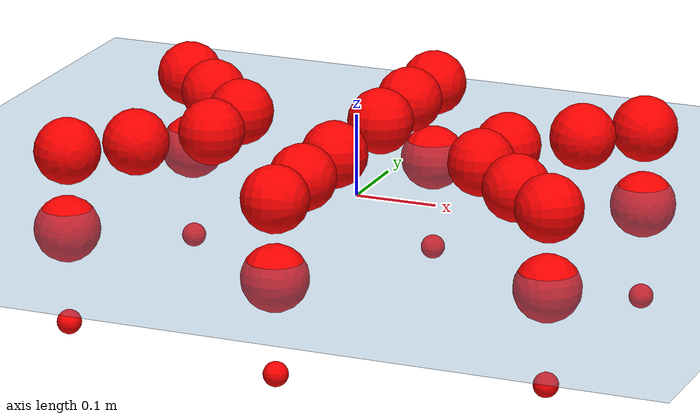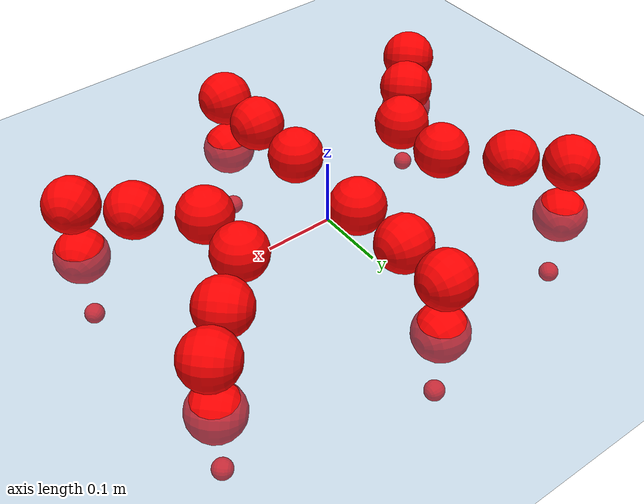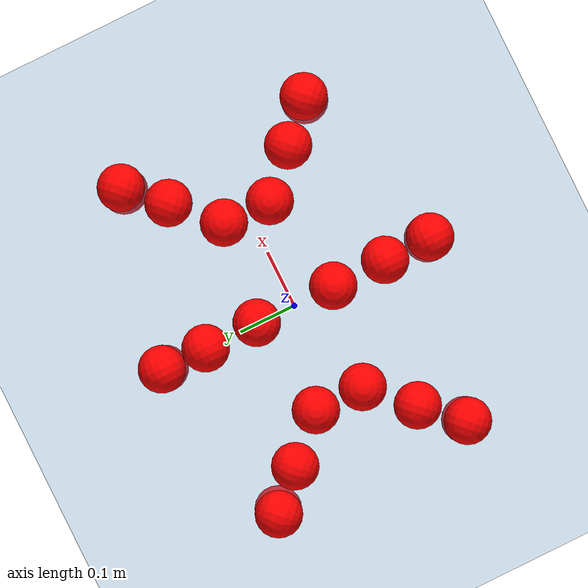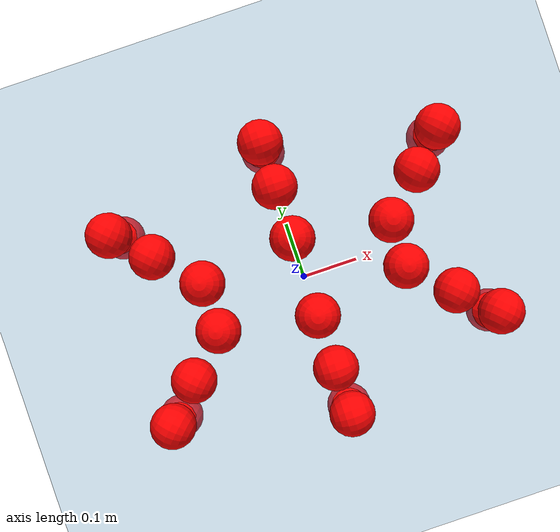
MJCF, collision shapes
<mujoco model="Golem">
  <compiler angle="radian" assetdir="assets" balanceinertia="true" inertiafromgeom="false"/>

  <option timestep="0.005" density="1.2" viscosity="2e-05"/>

  <size nkey="1"/>

  <visual>
    <quality shadowsize="8192"/>
    <map shadowclip="0.5"/>
  </visual>

  <default>
    <default class="/">
      <joint armature="0.01" damping="0.01" frictionloss="0.01"/>
      <geom contype="0" conaffinity="0" group="1" solref="-1000 -80"/>
      <site size="0.01 0.005 0.005" group="5"/>
      <general forcelimited="true" biastype="affine" gainprm="25" biasprm="0 -25 -0.5"/>
      <default class="visual">
        <geom type="mesh" group="2"/>
      </default>
      <default class="collision">
        <geom group="3"/>
      </default>
      <default class="foot">
        <geom size="0.01 0 0" condim="6" group="4" priority="1" solimp="0.015 1 0.01"/>
      </default>
      <default class="reward_collision_sphere">
        <geom group="5" rgba="1 0 0 1"/>
      </default>
    </default>
  </default>

  <asset>
    <texture type="skybox" colorspace="auto" name="//unnamed_texture_0" builtin="gradient" rgb1="0.95 0.95 0.95" rgb2="0.95 0.95 0.95" width="100" height="600"/>
    <texture type="2d" colorspace="auto" name="texplane" builtin="checker" rgb1="0.345 0.575 0.748" rgb2="0.345 0.575 0.748" markrgb="1 1 1" width="512" height="512"/>
    <material name="MatPlane" class="/" texture="texplane" texuniform="true" texrepeat="2 2" specular="0.9"/>
    <mesh name="body" class="/" file="body.stl" scale="0.001 0.001 0.001"/>
    <mesh name="coxa" class="/" file="coxa.stl" scale="0.001 0.001 0.001"/>
    <mesh name="femur" class="/" file="femur.stl" scale="0.001 0.001 0.001"/>
    <mesh name="tibia" class="/" file="tibia.stl" scale="0.001 0.001 0.001"/>
    <mesh name="tarsus" class="/" file="tarsus.stl" scale="0.001 0.001 0.001"/>
  </asset>

  <worldbody>
    <geom name="floor" class="/" size="100 100 0.125" type="plane" group="0" material="MatPlane"/>
    <light name="toplight_shadow" class="/" pos="0 0 5" dir="0.0990148 0.0990148 -0.990148" type="directional" ambient="0.04 0.04 0.04" diffuse="0.55 0.55 0.55" specular="0.12 0.12 0.12"/>
    <light name="toplight_fill" class="/" pos="0 0 5" dir="0.0990148 0.0990148 -0.990148" type="directional" castshadow="false" ambient="0.04 0.04 0.04" diffuse="0.3 0.3 0.3" specular="0.08 0.08 0.08"/>
    <body name="trunk" pos="0.00193916 -0.000280901 -0.000563093" quat="1 -4.78966e-06 -2.27167e-06 5.34902e-06">
      <inertial pos="-0.000228242 -0.000237827 -0.00281383" quat="1 0.000351106 0.000414813 -0.000373452" mass="3.58476" diaginertia="0.0148769 0.00272155 0.0183528"/>
      <joint name="//unnamed_joint_0" type="free"/>
      <geom name="//unnamed_geom_1" class="/" pos="0 0 0.0723428" quat="1 0 0 0" type="mesh" rgba="0.9 0.9 0.9 1" mesh="body"/>
      <site name="imu" class="/" pos="0.149403 0.0073492 0.108749" size="0.009973"/>
      <camera name="track" class="/" pos="0 -1.55108 0" quat="0.707107 0.707107 0 0" mode="trackcom"/>
      <camera name="ego_camera" class="/" pos="0.14118 0 0.113036" quat="-0.5 -0.5 0.5 0.5"/>
      <body name="coxa_RR" pos="-0.194633 -0.0644352 0.0715468" quat="0.382738 4.06156e-05 6.52539e-05 -0.923857">
        <inertial pos="0.000198087 -0.00207539 0.00151277" quat="0.999998 -0.00188686 5.79339e-05 0.000732897" mass="0.192839" diaginertia="0.0150274 0.00278693 0.0182625"/>
        <joint name="coxa_joint_RR" class="/" pos="0 0 0" axis="-0.00127959 -0.00708097 -0.999974" range="-3.14164 3.13998" armature="0.0094181" damping="0" frictionloss="0.0100106"/>
        <geom name="//unnamed_geom_2" class="/" type="mesh" rgba="0.2 0.2 0.2 1" mesh="coxa"/>
        <geom name="//unnamed_geom_3" class="reward_collision_sphere" size="0.039892" pos="-0.0325801 0 0"/>
        <body name="femur_RR" pos="0.0630845 0.000559271 -0.00113555" quat="0.499947 -0.499875 0.500139 0.500038">
          <inertial pos="0.000807514 0.00091838 0.000262742" quat="0.99999 0.000522903 -0.000534329 -0.00444418" mass="0.197927" diaginertia="0.0150951 0.0027719 0.0189518"/>
          <joint name="femur_joint_RR" class="/" pos="0 0 0" axis="0.00131317 -0.00489743 -0.999987" range="-3.16791 3.13208" armature="0.0103096" damping="0.00137423" frictionloss="0.0105558"/>
          <geom name="//unnamed_geom_4" class="/" type="mesh" rgba="0.9 0.9 0.9 1" mesh="femur"/>
          <geom name="//unnamed_geom_5" class="reward_collision_sphere" size="0.039892"/>
          <body name="tibia_RR" pos="-0.000161669 -0.0864485 0.00246049" quat="-0.00052062 1 -0.000452408 -0.000639312">
            <inertial pos="-0.00137297 0.000540194 -5.36471e-05" quat="0.999999 0.000587139 -0.000819289 -4.77985e-05" mass="0.201064" diaginertia="0.0150478 0.00284015 0.0185283"/>
            <joint name="tibia_joint_RR" class="/" pos="0 0 0" axis="0.00525008 -0.000661244 0.999986" range="-3.15766 3.13547" armature="0.00990897" damping="0.00330714" frictionloss="0.0100001"/>
            <geom name="//unnamed_geom_6" class="/" type="mesh" rgba="0.2 0.2 0.2 1" mesh="tibia"/>
            <geom name="//unnamed_geom_7" class="reward_collision_sphere" size="0.039892"/>
            <body name="tarsus_RR" pos="0.0964114 0.00152953 0.00117196" quat="1 4.32481e-06 5.46545e-05 7.22408e-05">
              <inertial pos="0.06767 0.00059255 -0.000872096" quat="0.500115 0.497862 0.502281 0.499733" mass="0.196762" diaginertia="0.0149075 0.00276372 0.0182542"/>
              <joint name="tarsus_joint_RR" class="/" pos="0 0 0" axis="-0.00169588 -0.0050264 0.999986" range="-3.1657 3.13895" armature="0.0103426" damping="0.0383308" frictionloss="0.0103705"/>
              <geom name="//unnamed_geom_8" class="/" type="mesh" rgba="0.9 0.9 0.9 1" mesh="tarsus"/>
              <geom name="foot_1" class="foot" size="0.00987906" pos="0.121632 0 0" quat="0 -0.707107 0 0.707107"/>
              <geom name="//unnamed_geom_10" class="reward_collision_sphere" size="0.039892"/>
              <geom name="//unnamed_geom_11" class="reward_collision_sphere" size="0.0149595" pos="0.116745 0 0"/>
              <site name="foot_1" class="foot" pos="0.121632 0 0" quat="0 -0.707107 0 0.707107" size="0.009973"/>
            </body>
          </body>
        </body>
      </body>
      <body name="coxa_RM" pos="-0.00066694 -0.104203 0.0727299" quat="0.707109 4.4665e-06 1.71029e-05 -0.707104">
        <inertial pos="0.000698795 0.000159455 0.00155929" quat="0.99999 -0.00362492 -0.000537504 0.0024606" mass="0.200742" diaginertia="0.0152246 0.00273443 0.0184977"/>
        <joint name="coxa_joint_RM" class="/" pos="0 0 0" axis="-0.00180426 0.000947667 -0.999998" range="-3.11823 3.13948" armature="0.00996545" damping="0.0053691" frictionloss="0.00881144"/>
        <geom name="//unnamed_geom_12" class="/" type="mesh" rgba="0.2 0.2 0.2 1" mesh="coxa"/>
        <geom name="//unnamed_geom_13" class="reward_collision_sphere" size="0.039892" pos="-0.0325801 0 0"/>
        <body name="femur_RM" pos="0.0628617 0.000536231 0.000445832" quat="0.50037 -0.499481 0.499639 0.50051">
          <inertial pos="-0.000477286 0.000782817 0.000149646" quat="0.999987 0.00391393 -0.00256412 -0.00183186" mass="0.203495" diaginertia="0.0155225 0.002843 0.0189111"/>
          <joint name="femur_joint_RM" class="/" pos="0 0 0" axis="-0.000653924 -0.00183191 -0.999998" range="-3.12882 3.13591" armature="0.0103924" damping="0.0119025" frictionloss="0.00993706"/>
          <geom name="//unnamed_geom_14" class="/" type="mesh" rgba="0.9 0.9 0.9 1" mesh="femur"/>
          <geom name="//unnamed_geom_15" class="reward_collision_sphere" size="0.039892"/>
          <body name="tibia_RM" pos="0.000415537 -0.0834502 0.00154957" quat="-2.33733e-06 1 5.01388e-05 -1.0811e-05">
            <inertial pos="0.000319127 -0.00225681 -5.52216e-05" quat="0.99997 0.00307491 -0.00689896 -0.00158292" mass="0.197315" diaginertia="0.015361 0.00291788 0.0186426"/>
            <joint name="tibia_joint_RM" class="/" pos="0 0 0" axis="-0.000479232 0.00205506 0.999998" range="-3.17085 3.18529" armature="0.00992145" damping="0.0125919" frictionloss="0.00974516"/>
            <geom name="//unnamed_geom_16" class="/" type="mesh" rgba="0.2 0.2 0.2 1" mesh="tibia"/>
            <geom name="//unnamed_geom_17" class="reward_collision_sphere" size="0.039892"/>
            <body name="tarsus_RM" pos="0.0947322 0.000263301 0.000638708" quat="1 -1.71142e-05 7.05602e-06 -0.000189019">
              <inertial pos="0.0645152 0.000373665 0.000999087" quat="0.50519 0.492754 0.497621 0.50433" mass="0.203591" diaginertia="0.0148472 0.00281739 0.0182723"/>
              <joint name="tarsus_joint_RM" class="/" pos="0 0 0" axis="-0.000324146 -0.000488236 1" range="-3.13987 3.15384" armature="0.00950469" damping="0.00497977" frictionloss="0.0100727"/>
              <geom name="//unnamed_geom_18" class="/" type="mesh" rgba="0.9 0.9 0.9 1" mesh="tarsus"/>
              <geom name="foot_2" class="foot" size="0.00971537" pos="0.121632 0 0" quat="0 -0.707107 0 0.707107"/>
              <geom name="//unnamed_geom_20" class="reward_collision_sphere" size="0.039892"/>
              <geom name="//unnamed_geom_21" class="reward_collision_sphere" size="0.0149595" pos="0.116745 0 0"/>
              <site name="foot_2" class="foot" pos="0.121632 0 0" quat="0 -0.707107 0 0.707107" size="0.009973"/>
            </body>
          </body>
        </body>
      </body>
      <body name="coxa_RF" pos="0.193787 -0.0624819 0.0745099" quat="0.923833 -0.000283473 -6.64126e-05 -0.382795">
        <inertial pos="0.000942284 -0.000507643 0.000303336" quat="1 0.000219369 -6.59116e-05 0.000636751" mass="0.198795" diaginertia="0.0150744 0.00277882 0.01874"/>
        <joint name="coxa_joint_RF" class="/" pos="0 0 0" axis="-0.00537406 -0.000884659 -0.999985" range="-3.13939 3.12661" armature="0.0105834" damping="0.0109782" frictionloss="0.0101778"/>
        <geom name="//unnamed_geom_22" class="/" type="mesh" rgba="0.2 0.2 0.2 1" mesh="coxa"/>
        <geom name="//unnamed_geom_23" class="reward_collision_sphere" size="0.039892" pos="-0.0325801 0 0"/>
        <body name="femur_RF" pos="0.0641182 0.000906876 -0.00204649" quat="0.500095 -0.4996 0.500212 0.500093">
          <inertial pos="-0.000854965 -0.000229296 0.000111932" quat="0.999989 -0.00242843 0.00397889 0.000998358" mass="0.200063" diaginertia="0.0151041 0.00284059 0.0190459"/>
          <joint name="femur_joint_RF" class="/" pos="0 0 0" axis="-0.000676696 0.000525933 -1" range="-3.18008 3.11955" armature="0.00925677" damping="0.0127193" frictionloss="0.0103829"/>
          <geom name="//unnamed_geom_24" class="/" type="mesh" rgba="0.9 0.9 0.9 1" mesh="femur"/>
          <geom name="//unnamed_geom_25" class="reward_collision_sphere" size="0.039892"/>
          <body name="tibia_RF" pos="-0.00147018 -0.0847206 0.00187246" quat="-6.42919e-07 1 3.2775e-05 3.26464e-05">
            <inertial pos="-0.00204873 4.03129e-06 0.000367715" quat="1 -0.000512642 -2.76832e-05 9.14745e-05" mass="0.201865" diaginertia="0.0150974 0.00279116 0.0184599"/>
            <joint name="tibia_joint_RF" class="/" pos="0 0 0" axis="-0.00308148 -0.00804457 0.999963" range="-3.12605 3.09666" armature="0.0104278" damping="0.0129143" frictionloss="0.0100065"/>
            <geom name="//unnamed_geom_26" class="/" type="mesh" rgba="0.2 0.2 0.2 1" mesh="tibia"/>
            <geom name="//unnamed_geom_27" class="reward_collision_sphere" size="0.039892"/>
            <body name="tarsus_RF" pos="0.0946595 0.00162428 0.00159033" quat="1 0.000458373 -0.00086405 1.77439e-05">
              <inertial pos="0.0653119 -0.000160464 -0.000243814" quat="0.499901 0.500019 0.499972 0.500108" mass="0.19677" diaginertia="0.0150812 0.00280872 0.0183476"/>
              <joint name="tarsus_joint_RF" class="/" pos="0 0 0" axis="0.00313098 0.00108217 0.999995" range="-3.11964 3.14997" armature="0.00985541" damping="0.00129047" frictionloss="0.0103193"/>
              <geom name="//unnamed_geom_28" class="/" type="mesh" rgba="0.9 0.9 0.9 1" mesh="tarsus"/>
              <geom name="foot_3" class="foot" size="0.010188" pos="0.121632 0 0" quat="0 -0.707107 0 0.707107"/>
              <geom name="//unnamed_geom_30" class="reward_collision_sphere" size="0.039892"/>
              <geom name="//unnamed_geom_31" class="reward_collision_sphere" size="0.0149595" pos="0.116745 0 0"/>
              <site name="foot_3" class="foot" pos="0.121632 0 0" quat="0 -0.707107 0 0.707107" size="0.009973"/>
            </body>
          </body>
        </body>
      </body>
      <body name="coxa_LR" pos="-0.194652 0.0675935 0.0718439" quat="0.382574 6.09301e-05 3.96903e-05 0.923925">
        <inertial pos="-0.00160311 -0.000996208 -0.00152638" quat="0.999946 0.00209135 0.0101416 -0.000308328" mass="0.19902" diaginertia="0.0151688 0.0029042 0.0183481"/>
        <joint name="coxa_joint_LR" class="/" pos="0 0 0" axis="-0.0123466 0.00319528 -0.999919" range="-3.12347 3.15108" armature="0.010137" damping="0.0178845" frictionloss="0.00948751"/>
        <geom name="//unnamed_geom_32" class="/" type="mesh" rgba="0.2 0.2 0.2 1" mesh="coxa"/>
        <geom name="//unnamed_geom_33" class="reward_collision_sphere" size="0.039892" pos="-0.0325801 0 0"/>
        <body name="femur_LR" pos="0.066029 -0.00239797 -0.00209276" quat="0.500203 -0.499857 0.500061 0.499879">
          <inertial pos="0.000744351 0.000372122 -0.000510956" quat="0.999997 -0.00160303 0.00111108 -0.00143321" mass="0.198475" diaginertia="0.015017 0.00283146 0.018277"/>
          <joint name="femur_joint_LR" class="/" pos="0 0 0" axis="0.000606871 -0.000241634 1" range="-3.15724 3.13065" armature="0.00982387" damping="0.0134343" frictionloss="0.00888444"/>
          <geom name="//unnamed_geom_34" class="/" type="mesh" rgba="0.9 0.9 0.9 1" mesh="femur"/>
          <geom name="//unnamed_geom_35" class="reward_collision_sphere" size="0.039892"/>
          <body name="tibia_LR" pos="-4.76587e-05 -0.083338 -5.94352e-05" quat="0.000681936 1 -4.16068e-05 0.000551158">
            <inertial pos="-4.2297e-05 0.000403896 1.38056e-05" quat="1 0.00040148 -0.00068682 -0.000234906" mass="0.19421" diaginertia="0.0150123 0.00280861 0.0181718"/>
            <joint name="tibia_joint_LR" class="/" pos="0 0 0" axis="0.00515128 -0.000144298 -0.999987" range="-3.12666 3.12036" armature="0.00975025" damping="0.00949677" frictionloss="0.0102077"/>
            <geom name="//unnamed_geom_36" class="/" type="mesh" rgba="0.2 0.2 0.2 1" mesh="tibia"/>
            <geom name="//unnamed_geom_37" class="reward_collision_sphere" size="0.039892"/>
            <body name="tarsus_LR" pos="0.0950665 -0.00101492 0.00221081" quat="0.999999 0.000930372 -0.00037989 9.24144e-05">
              <inertial pos="0.0681408 0.000497565 -0.00199662" quat="0.499792 0.500114 0.50009 0.500003" mass="0.196057" diaginertia="0.0149456 0.00275426 0.018128"/>
              <joint name="tarsus_joint_LR" class="/" pos="0 0 0" axis="-0.00232887 -0.00282567 -0.999993" range="-3.16395 3.11414" armature="0.0102514" damping="0" frictionloss="0.00947328"/>
              <geom name="//unnamed_geom_38" class="/" type="mesh" rgba="0.9 0.9 0.9 1" mesh="tarsus"/>
              <geom name="foot_4" class="foot" size="0.00973621" pos="0.121632 0 0" quat="0.707107 0 -0.707107 0"/>
              <geom name="//unnamed_geom_40" class="reward_collision_sphere" size="0.039892"/>
              <geom name="//unnamed_geom_41" class="reward_collision_sphere" size="0.0149595" pos="0.116745 0 0"/>
              <site name="foot_4" class="foot" pos="0.121632 0 0" quat="0.707107 0 -0.707107 0" size="0.009973"/>
            </body>
          </body>
        </body>
      </body>
      <body name="coxa_LM" pos="0.000407636 0.100906 0.0736946" quat="0.707042 -0.000121206 -0.000141 0.707172">
        <inertial pos="-0.000533225 0.000998862 0.00121828" quat="1 5.54465e-05 -4.78637e-05 -6.35897e-05" mass="0.201054" diaginertia="0.0153983 0.00285693 0.018723"/>
        <joint name="coxa_joint_LM" class="/" pos="0 0 0" axis="-2.08024e-05 0.000355318 -1" range="-3.11496 3.1464" armature="0.00957168" damping="0.00312956" frictionloss="0.0104405"/>
        <geom name="//unnamed_geom_42" class="/" type="mesh" rgba="0.2 0.2 0.2 1" mesh="coxa"/>
        <geom name="//unnamed_geom_43" class="reward_collision_sphere" size="0.039892" pos="-0.0325801 0 0"/>
        <body name="femur_LM" pos="0.061333 0.000434247 0.000721377" quat="0.499989 -0.500007 0.499985 0.500019">
          <inertial pos="-0.000918572 -0.0014155 0.00222733" quat="0.999954 -0.00730828 -0.0028277 0.00551219" mass="0.196693" diaginertia="0.0148475 0.00269904 0.0180497"/>
          <joint name="femur_joint_LM" class="/" pos="0 0 0" axis="-0.00295254 0.00201821 0.999994" range="-3.14273 3.11935" armature="0.00980375" damping="0.0052664" frictionloss="0.0100742"/>
          <geom name="//unnamed_geom_44" class="/" type="mesh" rgba="0.9 0.9 0.9 1" mesh="femur"/>
          <geom name="//unnamed_geom_45" class="reward_collision_sphere" size="0.039892"/>
          <body name="tibia_LM" pos="0.00100844 -0.0800751 -0.000804589" quat="0.000664903 0.999999 -0.000494733 -0.000859028">
            <inertial pos="-0.000262596 -0.00296569 -0.000976091" quat="1 0.000446228 -0.000222303 -5.35321e-05" mass="0.200891" diaginertia="0.0149202 0.00286072 0.0182278"/>
            <joint name="tibia_joint_LM" class="/" pos="0 0 0" axis="0.00227294 -0.00131341 -0.999997" range="-3.14208 3.12168" armature="0.0107093" damping="0" frictionloss="0.0102627"/>
            <geom name="//unnamed_geom_46" class="/" type="mesh" rgba="0.2 0.2 0.2 1" mesh="tibia"/>
            <geom name="//unnamed_geom_47" class="reward_collision_sphere" size="0.039892"/>
            <body name="tarsus_LM" pos="0.096841 -0.000386939 -0.000670253" quat="0.999999 0.000913481 0.000451591 0.000505059">
              <inertial pos="0.0651365 0.000655743 0.000586897" quat="0.500262 0.49992 0.49997 0.499848" mass="0.193452" diaginertia="0.0148738 0.00273984 0.0180784"/>
              <joint name="tarsus_joint_LM" class="/" pos="0 0 0" axis="0.00171782 0.00125833 -0.999998" range="-3.09492 3.12752" armature="0.0107326" damping="0" frictionloss="0.00947639"/>
              <geom name="//unnamed_geom_48" class="/" type="mesh" rgba="0.9 0.9 0.9 1" mesh="tarsus"/>
              <geom name="foot_5" class="foot" size="0.00965029" pos="0.121632 0 0" quat="0.707107 0 -0.707107 0"/>
              <geom name="//unnamed_geom_50" class="reward_collision_sphere" size="0.039892"/>
              <geom name="//unnamed_geom_51" class="reward_collision_sphere" size="0.0149595" pos="0.116745 0 0"/>
              <site name="foot_5" class="foot" pos="0.121632 0 0" quat="0.707107 0 -0.707107 0" size="0.009973"/>
            </body>
          </body>
        </body>
      </body>
      <body name="coxa_LF" pos="0.195354 0.0670245 0.0703544" quat="0.923851 -2.52715e-05 -0.000167997 0.382751">
        <inertial pos="1.73422e-05 0.000524346 0.00132177" quat="0.999999 0.00133399 0.000538737 0.000450185" mass="0.194276" diaginertia="0.0147843 0.00272797 0.0179084"/>
        <joint name="coxa_joint_LF" class="/" pos="0 0 0" axis="-0.00424812 -0.00262838 -0.999988" range="-3.12086 3.18152" armature="0.0106801" damping="0.00105888" frictionloss="0.00988412"/>
        <geom name="//unnamed_geom_52" class="/" type="mesh" rgba="0.2 0.2 0.2 1" mesh="coxa"/>
        <geom name="//unnamed_geom_53" class="reward_collision_sphere" size="0.039892" pos="-0.0325801 0 0"/>
        <body name="femur_LF" pos="0.0644994 -0.00115203 0.000265974" quat="0.499263 -0.500577 0.500055 0.500104">
          <inertial pos="0.00209448 0.00016523 0.000269418" quat="0.999994 -0.000226573 -0.00146374 -0.00322228" mass="0.200458" diaginertia="0.015231 0.00284544 0.0186446"/>
          <joint name="femur_joint_LF" class="/" pos="0 0 0" axis="0.00351971 0.00227847 0.999991" range="-3.1415 3.13593" armature="0.0106713" damping="0.00760218" frictionloss="0.0102799"/>
          <geom name="//unnamed_geom_54" class="/" type="mesh" rgba="0.9 0.9 0.9 1" mesh="femur"/>
          <geom name="//unnamed_geom_55" class="reward_collision_sphere" size="0.039892"/>
          <body name="tibia_LF" pos="0.000513937 -0.0824019 0.00106862" quat="0.000140852 1 -0.000386651 7.33812e-05">
            <inertial pos="-3.68753e-05 0.000810665 -0.000945246" quat="0.999992 -0.00193384 -0.00177853 -0.00302532" mass="0.200853" diaginertia="0.0152935 0.00282856 0.0185018"/>
            <joint name="tibia_joint_LF" class="/" pos="0 0 0" axis="-0.00170506 -0.000374953 -0.999998" range="-3.14128 3.14828" armature="0.0100428" damping="0" frictionloss="0.00962708"/>
            <geom name="//unnamed_geom_56" class="/" type="mesh" rgba="0.2 0.2 0.2 1" mesh="tibia"/>
            <geom name="//unnamed_geom_57" class="reward_collision_sphere" size="0.039892"/>
            <body name="tarsus_LF" pos="0.0951056 -0.000107186 -0.000731399" quat="1 0.000226251 -0.000541873 -0.000730349">
              <inertial pos="0.06568 0.000803699 0.000840063" quat="0.501258 0.498106 0.500939 0.499691" mass="0.19504" diaginertia="0.015044 0.00281102 0.0181043"/>
              <joint name="tarsus_joint_LF" class="/" pos="0 0 0" axis="-0.00242102 -0.00416251 -0.999988" stiffness="0.0262587" range="-3.15414 3.1214" armature="0.00988541" damping="0.0294806" frictionloss="0.00974357"/>
              <geom name="//unnamed_geom_58" class="/" type="mesh" rgba="0.9 0.9 0.9 1" mesh="tarsus"/>
              <geom name="foot_6" class="foot" size="0.01017" pos="0.121632 0 0" quat="0.707107 0 -0.707107 0"/>
              <geom name="//unnamed_geom_60" class="reward_collision_sphere" size="0.039892"/>
              <geom name="//unnamed_geom_61" class="reward_collision_sphere" size="0.0149595" pos="0.116745 0 0"/>
              <site name="foot_6" class="foot" pos="0.121632 0 0" quat="0.707107 0 -0.707107 0" size="0.009973"/>
            </body>
          </body>
        </body>
      </body>
    </body>
  </worldbody>

  <contact>
    <pair class="/" geom1="floor" geom2="foot_1" name="//unnamed_contact_0"/>
    <pair class="/" geom1="floor" geom2="foot_2" name="//unnamed_contact_1"/>
    <pair class="/" geom1="floor" geom2="foot_3" name="//unnamed_contact_2"/>
    <pair class="/" geom1="floor" geom2="foot_4" name="//unnamed_contact_3"/>
    <pair class="/" geom1="floor" geom2="foot_5" name="//unnamed_contact_4"/>
    <pair class="/" geom1="floor" geom2="foot_6" name="//unnamed_contact_5"/>
  </contact>

  <actuator>
    <general name="coxa_joint_RR" class="/" joint="coxa_joint_RR" forcerange="-7.43168 7.43168" gainprm="23.9998" biasprm="0 -23.9998 -0.528106"/>
    <general name="femur_joint_RR" class="/" joint="femur_joint_RR" forcerange="-7.3262 7.3262" gainprm="23.9998" biasprm="0 -23.9998 -0.528106"/>
    <general name="tibia_joint_RR" class="/" joint="tibia_joint_RR" forcerange="-7.28191 7.28191" gainprm="23.9998" biasprm="0 -23.9998 -0.528106"/>
    <general name="tarsus_joint_RR" class="/" joint="tarsus_joint_RR" forcerange="-7.47841 7.47841" gainprm="23.9998" biasprm="0 -23.9998 -0.528106"/>
    <general name="coxa_joint_RM" class="/" joint="coxa_joint_RM" forcerange="-6.7156 6.7156" gainprm="23.9998" biasprm="0 -23.9998 -0.528106"/>
    <general name="femur_joint_RM" class="/" joint="femur_joint_RM" forcerange="-7.33687 7.33687" gainprm="23.9998" biasprm="0 -23.9998 -0.528106"/>
    <general name="tibia_joint_RM" class="/" joint="tibia_joint_RM" forcerange="-7.3199 7.3199" gainprm="23.9998" biasprm="0 -23.9998 -0.528106"/>
    <general name="tarsus_joint_RM" class="/" joint="tarsus_joint_RM" forcerange="-7.43046 7.43046" gainprm="23.9998" biasprm="0 -23.9998 -0.528106"/>
    <general name="coxa_joint_RF" class="/" joint="coxa_joint_RF" forcerange="-6.78156 6.78156" gainprm="23.9998" biasprm="0 -23.9998 -0.528106"/>
    <general name="femur_joint_RF" class="/" joint="femur_joint_RF" forcerange="-7.4185 7.4185" gainprm="23.9998" biasprm="0 -23.9998 -0.528106"/>
    <general name="tibia_joint_RF" class="/" joint="tibia_joint_RF" forcerange="-6.68264 6.68264" gainprm="23.9998" biasprm="0 -23.9998 -0.528106"/>
    <general name="tarsus_joint_RF" class="/" joint="tarsus_joint_RF" forcerange="-7.10395 7.10395" gainprm="23.9998" biasprm="0 -23.9998 -0.528106"/>
    <general name="coxa_joint_LR" class="/" joint="coxa_joint_LR" forcerange="-7.25787 7.25787" gainprm="23.9998" biasprm="0 -23.9998 -0.528106"/>
    <general name="femur_joint_LR" class="/" joint="femur_joint_LR" forcerange="-7.30965 7.30965" gainprm="23.9998" biasprm="0 -23.9998 -0.528106"/>
    <general name="tibia_joint_LR" class="/" joint="tibia_joint_LR" forcerange="-7.25668 7.25668" gainprm="23.9998" biasprm="0 -23.9998 -0.528106"/>
    <general name="tarsus_joint_LR" class="/" joint="tarsus_joint_LR" forcerange="-7.00974 7.00974" gainprm="23.9998" biasprm="0 -23.9998 -0.528106"/>
    <general name="coxa_joint_LM" class="/" joint="coxa_joint_LM" forcerange="-7.58875 7.58875" gainprm="23.9998" biasprm="0 -23.9998 -0.528106"/>
    <general name="femur_joint_LM" class="/" joint="femur_joint_LM" forcerange="-7.25745 7.25745" gainprm="23.9998" biasprm="0 -23.9998 -0.528106"/>
    <general name="tibia_joint_LM" class="/" joint="tibia_joint_LM" forcerange="-7.13783 7.13783" gainprm="23.9998" biasprm="0 -23.9998 -0.528106"/>
    <general name="tarsus_joint_LM" class="/" joint="tarsus_joint_LM" forcerange="-7.32461 7.32461" gainprm="23.9998" biasprm="0 -23.9998 -0.528106"/>
    <general name="coxa_joint_LF" class="/" joint="coxa_joint_LF" forcerange="-6.6643 6.6643" gainprm="23.9998" biasprm="0 -23.9998 -0.528106"/>
    <general name="femur_joint_LF" class="/" joint="femur_joint_LF" forcerange="-7.1938 7.1938" gainprm="23.9998" biasprm="0 -23.9998 -0.528106"/>
    <general name="tibia_joint_LF" class="/" joint="tibia_joint_LF" forcerange="-7.17286 7.17286" gainprm="23.9998" biasprm="0 -23.9998 -0.528106"/>
    <general name="tarsus_joint_LF" class="/" joint="tarsus_joint_LF" forcerange="-7.40859 7.40859" gainprm="23.9998" biasprm="0 -23.9998 -0.528106"/>
  </actuator>

  <sensor>
    <gyro site="imu" name="imu_angular_velocity"/>
    <velocimeter site="imu" name="imu_linear_velocity"/>
    <framelinvel objtype="site" objname="foot_1" name="foot_1_global_linear_velocity"/>
    <framelinvel objtype="site" objname="foot_2" name="foot_2_global_linear_velocity"/>
    <framelinvel objtype="site" objname="foot_3" name="foot_3_global_linear_velocity"/>
    <framelinvel objtype="site" objname="foot_4" name="foot_4_global_linear_velocity"/>
    <framelinvel objtype="site" objname="foot_5" name="foot_5_global_linear_velocity"/>
    <framelinvel objtype="site" objname="foot_6" name="foot_6_global_linear_velocity"/>
  </sensor>

  <keyframe>
    <key name="home" qpos="0 0 0.1457 1 0 0 0 0 0 0 0 0 0 0 0 0 0 0 0 0 0 0 0 0 0 0 0 0 0 0 0"/>
  </keyframe>
</mujoco>
